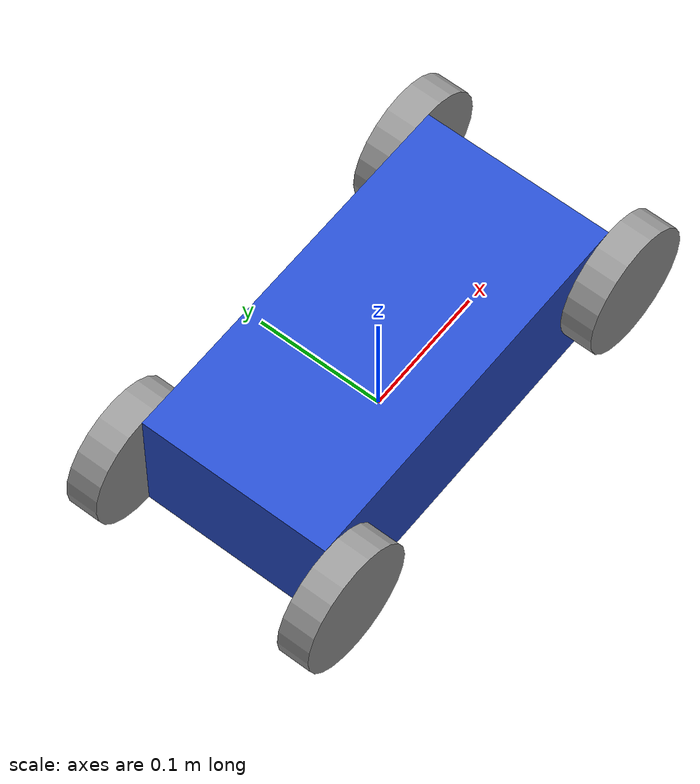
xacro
<?xml version="1.0"?>
<robot xmlns:xacro="http://www.ros.org/wiki/xacro">

    <xacro:property name="base_length" value="0.3" />
    <xacro:property name="base_width" value="0.15" />
    <xacro:property name="base_height" value="0.1" />
    <xacro:property name="wheel_radius" value="0.05" />
    <xacro:property name="wheel_length" value="0.025" />

    <link name="odom" />

    <link name="base_footprint" />

    <link name="laser_frame" />

    <link name="map" />

    <link name="base_link">
        <visual>
            <geometry>
                <box size="${base_length} ${base_width} ${base_height}" />
            </geometry>
            <origin xyz="0 0 0" rpy="0 0 0" />
            <material name="blue" />
        </visual>
        <collision>
            <geometry>
                <box size="${base_length} ${base_width} ${base_height}" />
            </geometry>
            <origin xyz="0 0 0" rpy="0 0 0" />
        </collision>
        <xacro:box_inertia m="5.0" l="${2*base_length}" w="${2*base_width}" h="${2*base_height}"
                           xyz="0 0 0" rpy="0 0 0" />
    </link>

    <xacro:macro name="wheel_link" params="prefix">
        <link name="${prefix}_wheel_link">
            <visual>
                <geometry>
                    <cylinder radius="${wheel_radius}" length="${wheel_length}" />
                </geometry>
                <origin xyz="0 0 0" rpy="${pi / 2.0} 0 0" />
                <material name="grey" />
            </visual>
            <collision>
                <geometry>
                    <cylinder radius="${wheel_radius}" length="${wheel_length}" />
                </geometry>
                <origin xyz="0 0 0" rpy="${pi / 2.0} 0 0" />
            </collision>
            <xacro:cylinder_inertia m="1.0" r="${2*wheel_radius}" h="${2*wheel_length}"
                                    xyz="0 0 0" rpy="${pi / 2.0} 0 0" />
        </link>
    </xacro:macro>

    <xacro:wheel_link prefix="right_front" />
    <xacro:wheel_link prefix="left_front" />
    <xacro:wheel_link prefix="right_rear" />
    <xacro:wheel_link prefix="left_rear" />

   <joint name="map_joint" type="fixed">
        <parent link="map" />
        <child link="odom" />
        <origin xyz="0 0 0" rpy="0 0 0"/>
   </joint>

   <joint name="odom_joint" type="fixed">
        <parent link="odom" />
        <child link="base_footprint" />
        <origin xyz="0 0 0" rpy="0 0 0"/>
   </joint>

   <joint name="base_joint" type="fixed">
        <parent link="base_footprint" />
        <child link="base_link" />
        <origin xyz="0 0 ${wheel_radius}" rpy="0 0 0"/>
    </joint>

   <joint name="laser_joint" type="fixed">
        <parent link="base_link" />
        <child link="laser_frame" />
        <origin xyz="0 0 0.2" rpy="0 0 0"/>
    </joint>

    <joint name="base_right_front_wheel_joint" type="continuous">
        <parent link="base_link" />
        <child link="right_front_wheel_link" />
        <origin xyz="${-base_length / 2} ${ (base_width+wheel_length) / 2.0} 0" rpy="0 0 0" />
        <axis xyz="0 1 0" />
    </joint>

    <joint name="base_left_front_wheel_joint" type="continuous">
        <parent link="base_link" />
        <child link="left_front_wheel_link" />
        <origin xyz="${-base_length / 2.0} ${ - (base_width+wheel_length)  / 2.0} 0" rpy="0 0 0" />
        <axis xyz="0 1 0" />
    </joint>

    <joint name="base_right_rear_wheel_joint" type="continuous">
        <parent link="base_link" />
        <child link="right_rear_wheel_link" />
        <origin xyz="${base_length / 2.0} ${(base_width+wheel_length)  / 2.0} 0" rpy="0 0 0" />
        <axis xyz="0 1 0" />
    </joint>

    <joint name="base_left_rear_wheel_joint" type="continuous">
        <parent link="base_link" />
        <child link="left_rear_wheel_link" />
        <origin xyz="${base_length / 2.0} ${ -(base_width+wheel_length) / 2.0 } 0" rpy="0 0 0" />
        <axis xyz="0 1 0" />
    </joint>

</robot>
